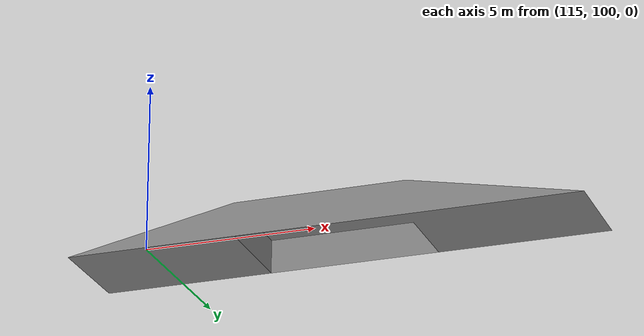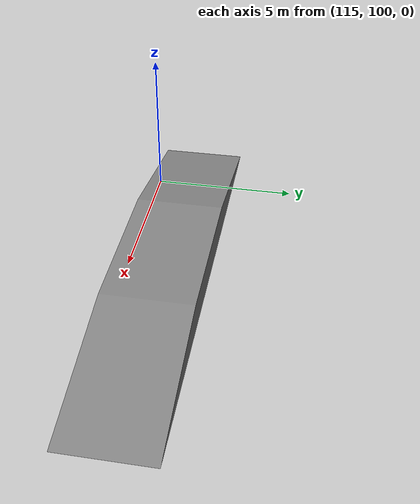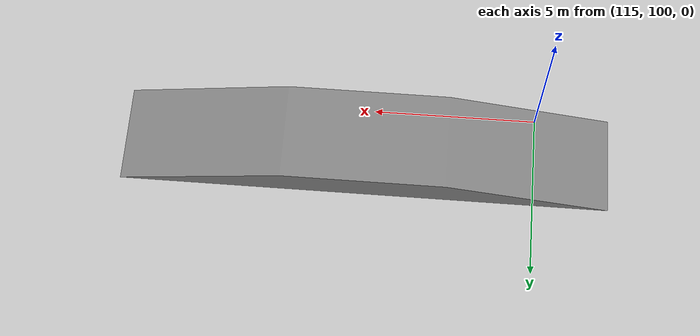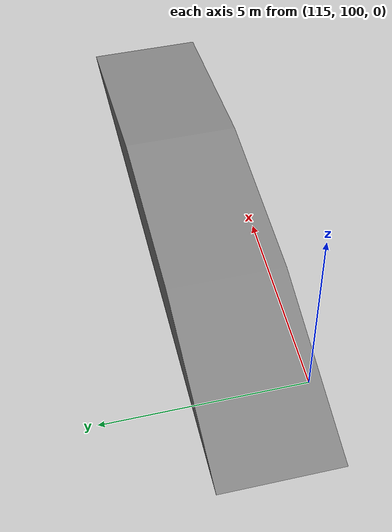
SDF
<?xml version='1.0'?>
<sdf version='1.6'>
  <model name="won2">
    <static>true</static>
    <link name="link">
      <collision name="collision">
        <geometry>
          <mesh>
            <uri>model://won2/meshes/won2.dae</uri>
            <scale>0.001 0.001 0.001</scale>
          </mesh>
        </geometry>
      </collision>
      <visual name="visual">
        <geometry>
          <mesh>
            <uri>model://won2/meshes/won2.dae</uri>
            <scale>0.001 0.001 0.001</scale>
          </mesh>
        </geometry>
        <material>
          <ambient>0.5 0.5 0.5 1</ambient> <!-- Grey color -->
          <diffuse>0.5 0.5 0.5 1</diffuse> <!-- Grey color -->
          <specular>0.5 0.5 0.5 1</specular> <!-- Neutral specular reflection, adjusted to match grey tone -->
        </material>
      </visual>
    </link>
  </model>
</sdf>
